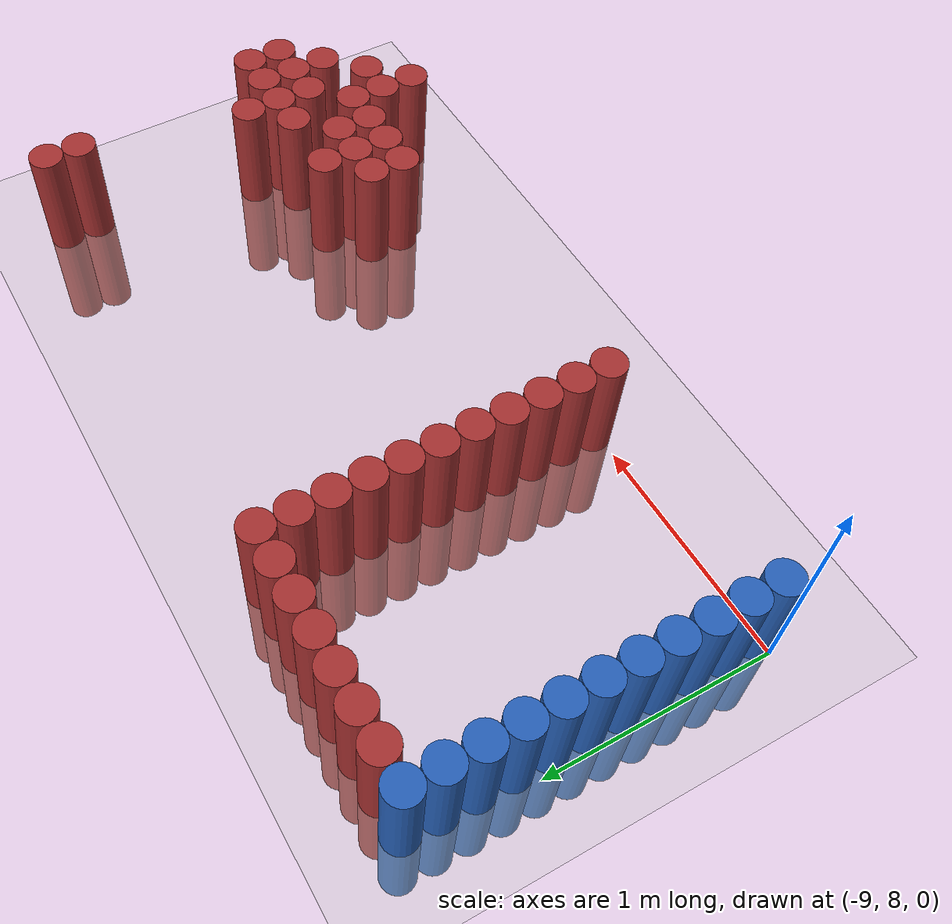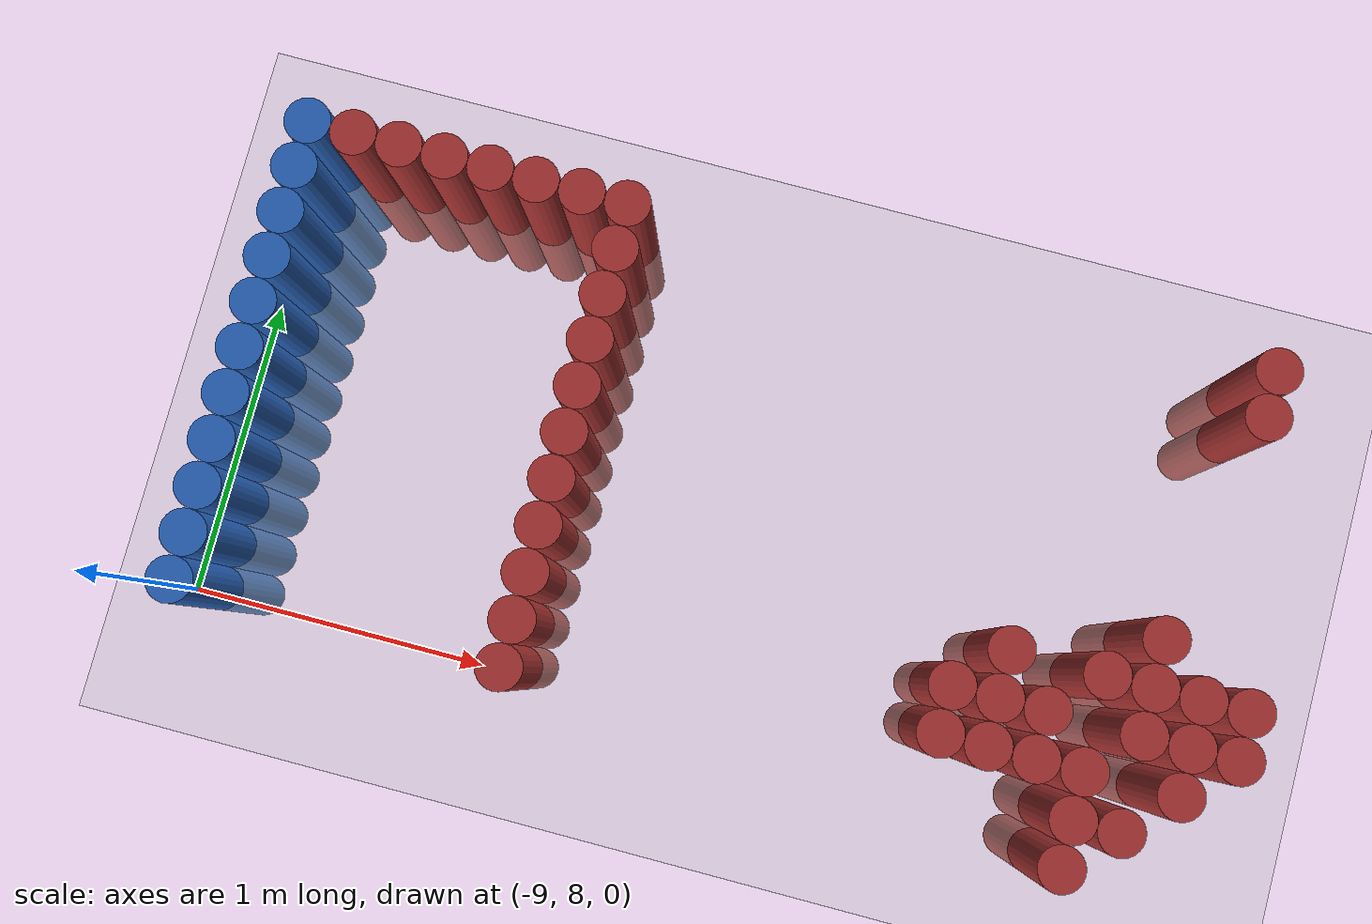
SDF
<sdf version="1.6">
 <world name="default">
  <model name="ground_plane">
   <static>1</static>
   <link name="link">
    <collision name="collision">
     <geometry><plane><normal>0 0 1</normal><size>100 100</size></plane></geometry>
     <surface><friction><ode><mu>100</mu><mu2>50</mu2></ode></friction></surface>
    </collision>
    <visual name="visual">
     <cast_shadows>0</cast_shadows>
     <geometry><plane><normal>0 0 1</normal><size>100 100</size></plane></geometry>
     <material>
      <script><uri>file://media/materials/scripts/gazebo.material</uri><name>Gazebo/Grey</name></script>
     </material>
    </visual>
   </link>
  </model>
  <model name="unit_cylinder_144">
   <static>1</static>
   <pose>-8.925000 8.025000 0.000000 0.000000 0.000000 0.000000</pose>
   <link name="link">
    <inertial>
     <mass>1</mass>
     <inertia><ixx>0.145833</ixx><ixy>0</ixy><ixz>0</ixz><iyy>0.145833</iyy><iyz>0</iyz><izz>0.125</izz></inertia>
    </inertial>
    <collision name="collision">
     <geometry><cylinder><radius>0.075000</radius><length>1</length></cylinder></geometry>
    </collision>
    <visual name="visual">
     <geometry><cylinder><radius>0.075000</radius><length>1</length></cylinder></geometry>
     <material>
      <ambient>0.152000 0.379000 0.720000 1</ambient>
      <diffuse>0.152000 0.379000 0.720000 1</diffuse>
     </material>
     <material>
      <script><name>Gazebo/Grey</name><uri>file://media/materials/scripts/gazebo.material</uri></script>
     </material>
    </visual>
   </link>
  </model>
  <model name="unit_cylinder_145">
   <static>1</static>
   <pose>-8.925000 8.175000 0.000000 0.000000 0.000000 0.000000</pose>
   <link name="link">
    <inertial>
     <mass>1</mass>
     <inertia><ixx>0.145833</ixx><ixy>0</ixy><ixz>0</ixz><iyy>0.145833</iyy><iyz>0</iyz><izz>0.125</izz></inertia>
    </inertial>
    <collision name="collision">
     <geometry><cylinder><radius>0.075000</radius><length>1</length></cylinder></geometry>
    </collision>
    <visual name="visual">
     <geometry><cylinder><radius>0.075000</radius><length>1</length></cylinder></geometry>
     <material>
      <ambient>0.152000 0.379000 0.720000 1</ambient>
      <diffuse>0.152000 0.379000 0.720000 1</diffuse>
     </material>
     <material>
      <script><name>Gazebo/Grey</name><uri>file://media/materials/scripts/gazebo.material</uri></script>
     </material>
    </visual>
   </link>
  </model>
  <model name="unit_cylinder_146">
   <static>1</static>
   <pose>-8.925000 8.325000 0.000000 0.000000 0.000000 0.000000</pose>
   <link name="link">
    <inertial>
     <mass>1</mass>
     <inertia><ixx>0.145833</ixx><ixy>0</ixy><ixz>0</ixz><iyy>0.145833</iyy><iyz>0</iyz><izz>0.125</izz></inertia>
    </inertial>
    <collision name="collision">
     <geometry><cylinder><radius>0.075000</radius><length>1</length></cylinder></geometry>
    </collision>
    <visual name="visual">
     <geometry><cylinder><radius>0.075000</radius><length>1</length></cylinder></geometry>
     <material>
      <ambient>0.152000 0.379000 0.720000 1</ambient>
      <diffuse>0.152000 0.379000 0.720000 1</diffuse>
     </material>
     <material>
      <script><name>Gazebo/Grey</name><uri>file://media/materials/scripts/gazebo.material</uri></script>
     </material>
    </visual>
   </link>
  </model>
  <model name="unit_cylinder_147">
   <static>1</static>
   <pose>-8.925000 8.475000 0.000000 0.000000 0.000000 0.000000</pose>
   <link name="link">
    <inertial>
     <mass>1</mass>
     <inertia><ixx>0.145833</ixx><ixy>0</ixy><ixz>0</ixz><iyy>0.145833</iyy><iyz>0</iyz><izz>0.125</izz></inertia>
    </inertial>
    <collision name="collision">
     <geometry><cylinder><radius>0.075000</radius><length>1</length></cylinder></geometry>
    </collision>
    <visual name="visual">
     <geometry><cylinder><radius>0.075000</radius><length>1</length></cylinder></geometry>
     <material>
      <ambient>0.152000 0.379000 0.720000 1</ambient>
      <diffuse>0.152000 0.379000 0.720000 1</diffuse>
     </material>
     <material>
      <script><name>Gazebo/Grey</name><uri>file://media/materials/scripts/gazebo.material</uri></script>
     </material>
    </visual>
   </link>
  </model>
  <model name="unit_cylinder_148">
   <static>1</static>
   <pose>-8.925000 8.625000 0.000000 0.000000 0.000000 0.000000</pose>
   <link name="link">
    <inertial>
     <mass>1</mass>
     <inertia><ixx>0.145833</ixx><ixy>0</ixy><ixz>0</ixz><iyy>0.145833</iyy><iyz>0</iyz><izz>0.125</izz></inertia>
    </inertial>
    <collision name="collision">
     <geometry><cylinder><radius>0.075000</radius><length>1</length></cylinder></geometry>
    </collision>
    <visual name="visual">
     <geometry><cylinder><radius>0.075000</radius><length>1</length></cylinder></geometry>
     <material>
      <ambient>0.152000 0.379000 0.720000 1</ambient>
      <diffuse>0.152000 0.379000 0.720000 1</diffuse>
     </material>
     <material>
      <script><name>Gazebo/Grey</name><uri>file://media/materials/scripts/gazebo.material</uri></script>
     </material>
    </visual>
   </link>
  </model>
  <model name="unit_cylinder_149">
   <static>1</static>
   <pose>-8.925000 8.775000 0.000000 0.000000 0.000000 0.000000</pose>
   <link name="link">
    <inertial>
     <mass>1</mass>
     <inertia><ixx>0.145833</ixx><ixy>0</ixy><ixz>0</ixz><iyy>0.145833</iyy><iyz>0</iyz><izz>0.125</izz></inertia>
    </inertial>
    <collision name="collision">
     <geometry><cylinder><radius>0.075000</radius><length>1</length></cylinder></geometry>
    </collision>
    <visual name="visual">
     <geometry><cylinder><radius>0.075000</radius><length>1</length></cylinder></geometry>
     <material>
      <ambient>0.152000 0.379000 0.720000 1</ambient>
      <diffuse>0.152000 0.379000 0.720000 1</diffuse>
     </material>
     <material>
      <script><name>Gazebo/Grey</name><uri>file://media/materials/scripts/gazebo.material</uri></script>
     </material>
    </visual>
   </link>
  </model>
  <model name="unit_cylinder_150">
   <static>1</static>
   <pose>-8.925000 8.925000 0.000000 0.000000 0.000000 0.000000</pose>
   <link name="link">
    <inertial>
     <mass>1</mass>
     <inertia><ixx>0.145833</ixx><ixy>0</ixy><ixz>0</ixz><iyy>0.145833</iyy><iyz>0</iyz><izz>0.125</izz></inertia>
    </inertial>
    <collision name="collision">
     <geometry><cylinder><radius>0.075000</radius><length>1</length></cylinder></geometry>
    </collision>
    <visual name="visual">
     <geometry><cylinder><radius>0.075000</radius><length>1</length></cylinder></geometry>
     <material>
      <ambient>0.152000 0.379000 0.720000 1</ambient>
      <diffuse>0.152000 0.379000 0.720000 1</diffuse>
     </material>
     <material>
      <script><name>Gazebo/Grey</name><uri>file://media/materials/scripts/gazebo.material</uri></script>
     </material>
    </visual>
   </link>
  </model>
  <model name="unit_cylinder_151">
   <static>1</static>
   <pose>-8.925000 9.075000 0.000000 0.000000 0.000000 0.000000</pose>
   <link name="link">
    <inertial>
     <mass>1</mass>
     <inertia><ixx>0.145833</ixx><ixy>0</ixy><ixz>0</ixz><iyy>0.145833</iyy><iyz>0</iyz><izz>0.125</izz></inertia>
    </inertial>
    <collision name="collision">
     <geometry><cylinder><radius>0.075000</radius><length>1</length></cylinder></geometry>
    </collision>
    <visual name="visual">
     <geometry><cylinder><radius>0.075000</radius><length>1</length></cylinder></geometry>
     <material>
      <ambient>0.152000 0.379000 0.720000 1</ambient>
      <diffuse>0.152000 0.379000 0.720000 1</diffuse>
     </material>
     <material>
      <script><name>Gazebo/Grey</name><uri>file://media/materials/scripts/gazebo.material</uri></script>
     </material>
    </visual>
   </link>
  </model>
  <model name="unit_cylinder_152">
   <static>1</static>
   <pose>-8.925000 9.225000 0.000000 0.000000 0.000000 0.000000</pose>
   <link name="link">
    <inertial>
     <mass>1</mass>
     <inertia><ixx>0.145833</ixx><ixy>0</ixy><ixz>0</ixz><iyy>0.145833</iyy><iyz>0</iyz><izz>0.125</izz></inertia>
    </inertial>
    <collision name="collision">
     <geometry><cylinder><radius>0.075000</radius><length>1</length></cylinder></geometry>
    </collision>
    <visual name="visual">
     <geometry><cylinder><radius>0.075000</radius><length>1</length></cylinder></geometry>
     <material>
      <ambient>0.152000 0.379000 0.720000 1</ambient>
      <diffuse>0.152000 0.379000 0.720000 1</diffuse>
     </material>
     <material>
      <script><name>Gazebo/Grey</name><uri>file://media/materials/scripts/gazebo.material</uri></script>
     </material>
    </visual>
   </link>
  </model>
  <model name="unit_cylinder_153">
   <static>1</static>
   <pose>-8.925000 9.375000 0.000000 0.000000 0.000000 0.000000</pose>
   <link name="link">
    <inertial>
     <mass>1</mass>
     <inertia><ixx>0.145833</ixx><ixy>0</ixy><ixz>0</ixz><iyy>0.145833</iyy><iyz>0</iyz><izz>0.125</izz></inertia>
    </inertial>
    <collision name="collision">
     <geometry><cylinder><radius>0.075000</radius><length>1</length></cylinder></geometry>
    </collision>
    <visual name="visual">
     <geometry><cylinder><radius>0.075000</radius><length>1</length></cylinder></geometry>
     <material>
      <ambient>0.152000 0.379000 0.720000 1</ambient>
      <diffuse>0.152000 0.379000 0.720000 1</diffuse>
     </material>
     <material>
      <script><name>Gazebo/Grey</name><uri>file://media/materials/scripts/gazebo.material</uri></script>
     </material>
    </visual>
   </link>
  </model>
  <model name="unit_cylinder_154">
   <static>1</static>
   <pose>-8.925000 9.525000 0.000000 0.000000 0.000000 0.000000</pose>
   <link name="link">
    <inertial>
     <mass>1</mass>
     <inertia><ixx>0.145833</ixx><ixy>0</ixy><ixz>0</ixz><iyy>0.145833</iyy><iyz>0</iyz><izz>0.125</izz></inertia>
    </inertial>
    <collision name="collision">
     <geometry><cylinder><radius>0.075000</radius><length>1</length></cylinder></geometry>
    </collision>
    <visual name="visual">
     <geometry><cylinder><radius>0.075000</radius><length>1</length></cylinder></geometry>
     <material>
      <ambient>0.152000 0.379000 0.720000 1</ambient>
      <diffuse>0.152000 0.379000 0.720000 1</diffuse>
     </material>
     <material>
      <script><name>Gazebo/Grey</name><uri>file://media/materials/scripts/gazebo.material</uri></script>
     </material>
    </visual>
   </link>
  </model>
  <model name="unit_cylinder_156">
   <static>1</static>
   <pose>-8.775000 9.525000 0.000000 0.000000 0.000000 0.000000</pose>
   <link name="link">
    <inertial>
     <mass>1</mass>
     <inertia><ixx>0.145833</ixx><ixy>0</ixy><ixz>0</ixz><iyy>0.145833</iyy><iyz>0</iyz><izz>0.125</izz></inertia>
    </inertial>
    <collision name="collision">
     <geometry><cylinder><radius>0.075000</radius><length>1</length></cylinder></geometry>
    </collision>
    <visual name="visual">
     <geometry><cylinder><radius>0.075000</radius><length>1</length></cylinder></geometry>
     <material>
      <ambient>0.648000 0.192000 0.192000 1</ambient>
      <diffuse>0.648000 0.192000 0.192000 1</diffuse>
     </material>
     <material>
      <script><name>Gazebo/Grey</name><uri>file://media/materials/scripts/gazebo.material</uri></script>
     </material>
    </visual>
   </link>
  </model>
  <model name="unit_cylinder_158">
   <static>1</static>
   <pose>-8.625000 9.525000 0.000000 0.000000 0.000000 0.000000</pose>
   <link name="link">
    <inertial>
     <mass>1</mass>
     <inertia><ixx>0.145833</ixx><ixy>0</ixy><ixz>0</ixz><iyy>0.145833</iyy><iyz>0</iyz><izz>0.125</izz></inertia>
    </inertial>
    <collision name="collision">
     <geometry><cylinder><radius>0.075000</radius><length>1</length></cylinder></geometry>
    </collision>
    <visual name="visual">
     <geometry><cylinder><radius>0.075000</radius><length>1</length></cylinder></geometry>
     <material>
      <ambient>0.648000 0.192000 0.192000 1</ambient>
      <diffuse>0.648000 0.192000 0.192000 1</diffuse>
     </material>
     <material>
      <script><name>Gazebo/Grey</name><uri>file://media/materials/scripts/gazebo.material</uri></script>
     </material>
    </visual>
   </link>
  </model>
  <model name="unit_cylinder_160">
   <static>1</static>
   <pose>-8.475000 9.525000 0.000000 0.000000 0.000000 0.000000</pose>
   <link name="link">
    <inertial>
     <mass>1</mass>
     <inertia><ixx>0.145833</ixx><ixy>0</ixy><ixz>0</ixz><iyy>0.145833</iyy><iyz>0</iyz><izz>0.125</izz></inertia>
    </inertial>
    <collision name="collision">
     <geometry><cylinder><radius>0.075000</radius><length>1</length></cylinder></geometry>
    </collision>
    <visual name="visual">
     <geometry><cylinder><radius>0.075000</radius><length>1</length></cylinder></geometry>
     <material>
      <ambient>0.648000 0.192000 0.192000 1</ambient>
      <diffuse>0.648000 0.192000 0.192000 1</diffuse>
     </material>
     <material>
      <script><name>Gazebo/Grey</name><uri>file://media/materials/scripts/gazebo.material</uri></script>
     </material>
    </visual>
   </link>
  </model>
  <model name="unit_cylinder_162">
   <static>1</static>
   <pose>-8.325000 9.525000 0.000000 0.000000 0.000000 0.000000</pose>
   <link name="link">
    <inertial>
     <mass>1</mass>
     <inertia><ixx>0.145833</ixx><ixy>0</ixy><ixz>0</ixz><iyy>0.145833</iyy><iyz>0</iyz><izz>0.125</izz></inertia>
    </inertial>
    <collision name="collision">
     <geometry><cylinder><radius>0.075000</radius><length>1</length></cylinder></geometry>
    </collision>
    <visual name="visual">
     <geometry><cylinder><radius>0.075000</radius><length>1</length></cylinder></geometry>
     <material>
      <ambient>0.648000 0.192000 0.192000 1</ambient>
      <diffuse>0.648000 0.192000 0.192000 1</diffuse>
     </material>
     <material>
      <script><name>Gazebo/Grey</name><uri>file://media/materials/scripts/gazebo.material</uri></script>
     </material>
    </visual>
   </link>
  </model>
  <model name="unit_cylinder_164">
   <static>1</static>
   <pose>-8.175000 9.525000 0.000000 0.000000 0.000000 0.000000</pose>
   <link name="link">
    <inertial>
     <mass>1</mass>
     <inertia><ixx>0.145833</ixx><ixy>0</ixy><ixz>0</ixz><iyy>0.145833</iyy><iyz>0</iyz><izz>0.125</izz></inertia>
    </inertial>
    <collision name="collision">
     <geometry><cylinder><radius>0.075000</radius><length>1</length></cylinder></geometry>
    </collision>
    <visual name="visual">
     <geometry><cylinder><radius>0.075000</radius><length>1</length></cylinder></geometry>
     <material>
      <ambient>0.648000 0.192000 0.192000 1</ambient>
      <diffuse>0.648000 0.192000 0.192000 1</diffuse>
     </material>
     <material>
      <script><name>Gazebo/Grey</name><uri>file://media/materials/scripts/gazebo.material</uri></script>
     </material>
    </visual>
   </link>
  </model>
  <model name="unit_cylinder_166">
   <static>1</static>
   <pose>-8.025000 9.525000 0.000000 0.000000 0.000000 0.000000</pose>
   <link name="link">
    <inertial>
     <mass>1</mass>
     <inertia><ixx>0.145833</ixx><ixy>0</ixy><ixz>0</ixz><iyy>0.145833</iyy><iyz>0</iyz><izz>0.125</izz></inertia>
    </inertial>
    <collision name="collision">
     <geometry><cylinder><radius>0.075000</radius><length>1</length></cylinder></geometry>
    </collision>
    <visual name="visual">
     <geometry><cylinder><radius>0.075000</radius><length>1</length></cylinder></geometry>
     <material>
      <ambient>0.648000 0.192000 0.192000 1</ambient>
      <diffuse>0.648000 0.192000 0.192000 1</diffuse>
     </material>
     <material>
      <script><name>Gazebo/Grey</name><uri>file://media/materials/scripts/gazebo.material</uri></script>
     </material>
    </visual>
   </link>
  </model>
  <model name="unit_cylinder_179">
   <static>1</static>
   <pose>-7.875000 8.025000 0.000000 0.000000 0.000000 0.000000</pose>
   <link name="link">
    <inertial>
     <mass>1</mass>
     <inertia><ixx>0.145833</ixx><ixy>0</ixy><ixz>0</ixz><iyy>0.145833</iyy><iyz>0</iyz><izz>0.125</izz></inertia>
    </inertial>
    <collision name="collision">
     <geometry><cylinder><radius>0.075000</radius><length>1</length></cylinder></geometry>
    </collision>
    <visual name="visual">
     <geometry><cylinder><radius>0.075000</radius><length>1</length></cylinder></geometry>
     <material>
      <ambient>0.648000 0.192000 0.192000 1</ambient>
      <diffuse>0.648000 0.192000 0.192000 1</diffuse>
     </material>
     <material>
      <script><name>Gazebo/Grey</name><uri>file://media/materials/scripts/gazebo.material</uri></script>
     </material>
    </visual>
   </link>
  </model>
  <model name="unit_cylinder_180">
   <static>1</static>
   <pose>-7.875000 8.175000 0.000000 0.000000 0.000000 0.000000</pose>
   <link name="link">
    <inertial>
     <mass>1</mass>
     <inertia><ixx>0.145833</ixx><ixy>0</ixy><ixz>0</ixz><iyy>0.145833</iyy><iyz>0</iyz><izz>0.125</izz></inertia>
    </inertial>
    <collision name="collision">
     <geometry><cylinder><radius>0.075000</radius><length>1</length></cylinder></geometry>
    </collision>
    <visual name="visual">
     <geometry><cylinder><radius>0.075000</radius><length>1</length></cylinder></geometry>
     <material>
      <ambient>0.648000 0.192000 0.192000 1</ambient>
      <diffuse>0.648000 0.192000 0.192000 1</diffuse>
     </material>
     <material>
      <script><name>Gazebo/Grey</name><uri>file://media/materials/scripts/gazebo.material</uri></script>
     </material>
    </visual>
   </link>
  </model>
  <model name="unit_cylinder_181">
   <static>1</static>
   <pose>-7.875000 8.325000 0.000000 0.000000 0.000000 0.000000</pose>
   <link name="link">
    <inertial>
     <mass>1</mass>
     <inertia><ixx>0.145833</ixx><ixy>0</ixy><ixz>0</ixz><iyy>0.145833</iyy><iyz>0</iyz><izz>0.125</izz></inertia>
    </inertial>
    <collision name="collision">
     <geometry><cylinder><radius>0.075000</radius><length>1</length></cylinder></geometry>
    </collision>
    <visual name="visual">
     <geometry><cylinder><radius>0.075000</radius><length>1</length></cylinder></geometry>
     <material>
      <ambient>0.648000 0.192000 0.192000 1</ambient>
      <diffuse>0.648000 0.192000 0.192000 1</diffuse>
     </material>
     <material>
      <script><name>Gazebo/Grey</name><uri>file://media/materials/scripts/gazebo.material</uri></script>
     </material>
    </visual>
   </link>
  </model>
  <model name="unit_cylinder_182">
   <static>1</static>
   <pose>-7.875000 8.475000 0.000000 0.000000 0.000000 0.000000</pose>
   <link name="link">
    <inertial>
     <mass>1</mass>
     <inertia><ixx>0.145833</ixx><ixy>0</ixy><ixz>0</ixz><iyy>0.145833</iyy><iyz>0</iyz><izz>0.125</izz></inertia>
    </inertial>
    <collision name="collision">
     <geometry><cylinder><radius>0.075000</radius><length>1</length></cylinder></geometry>
    </collision>
    <visual name="visual">
     <geometry><cylinder><radius>0.075000</radius><length>1</length></cylinder></geometry>
     <material>
      <ambient>0.648000 0.192000 0.192000 1</ambient>
      <diffuse>0.648000 0.192000 0.192000 1</diffuse>
     </material>
     <material>
      <script><name>Gazebo/Grey</name><uri>file://media/materials/scripts/gazebo.material</uri></script>
     </material>
    </visual>
   </link>
  </model>
  <model name="unit_cylinder_183">
   <static>1</static>
   <pose>-7.875000 8.625000 0.000000 0.000000 0.000000 0.000000</pose>
   <link name="link">
    <inertial>
     <mass>1</mass>
     <inertia><ixx>0.145833</ixx><ixy>0</ixy><ixz>0</ixz><iyy>0.145833</iyy><iyz>0</iyz><izz>0.125</izz></inertia>
    </inertial>
    <collision name="collision">
     <geometry><cylinder><radius>0.075000</radius><length>1</length></cylinder></geometry>
    </collision>
    <visual name="visual">
     <geometry><cylinder><radius>0.075000</radius><length>1</length></cylinder></geometry>
     <material>
      <ambient>0.648000 0.192000 0.192000 1</ambient>
      <diffuse>0.648000 0.192000 0.192000 1</diffuse>
     </material>
     <material>
      <script><name>Gazebo/Grey</name><uri>file://media/materials/scripts/gazebo.material</uri></script>
     </material>
    </visual>
   </link>
  </model>
  <model name="unit_cylinder_184">
   <static>1</static>
   <pose>-7.875000 8.775000 0.000000 0.000000 0.000000 0.000000</pose>
   <link name="link">
    <inertial>
     <mass>1</mass>
     <inertia><ixx>0.145833</ixx><ixy>0</ixy><ixz>0</ixz><iyy>0.145833</iyy><iyz>0</iyz><izz>0.125</izz></inertia>
    </inertial>
    <collision name="collision">
     <geometry><cylinder><radius>0.075000</radius><length>1</length></cylinder></geometry>
    </collision>
    <visual name="visual">
     <geometry><cylinder><radius>0.075000</radius><length>1</length></cylinder></geometry>
     <material>
      <ambient>0.648000 0.192000 0.192000 1</ambient>
      <diffuse>0.648000 0.192000 0.192000 1</diffuse>
     </material>
     <material>
      <script><name>Gazebo/Grey</name><uri>file://media/materials/scripts/gazebo.material</uri></script>
     </material>
    </visual>
   </link>
  </model>
  <model name="unit_cylinder_185">
   <static>1</static>
   <pose>-7.875000 8.925000 0.000000 0.000000 0.000000 0.000000</pose>
   <link name="link">
    <inertial>
     <mass>1</mass>
     <inertia><ixx>0.145833</ixx><ixy>0</ixy><ixz>0</ixz><iyy>0.145833</iyy><iyz>0</iyz><izz>0.125</izz></inertia>
    </inertial>
    <collision name="collision">
     <geometry><cylinder><radius>0.075000</radius><length>1</length></cylinder></geometry>
    </collision>
    <visual name="visual">
     <geometry><cylinder><radius>0.075000</radius><length>1</length></cylinder></geometry>
     <material>
      <ambient>0.648000 0.192000 0.192000 1</ambient>
      <diffuse>0.648000 0.192000 0.192000 1</diffuse>
     </material>
     <material>
      <script><name>Gazebo/Grey</name><uri>file://media/materials/scripts/gazebo.material</uri></script>
     </material>
    </visual>
   </link>
  </model>
  <model name="unit_cylinder_186">
   <static>1</static>
   <pose>-7.875000 9.075000 0.000000 0.000000 0.000000 0.000000</pose>
   <link name="link">
    <inertial>
     <mass>1</mass>
     <inertia><ixx>0.145833</ixx><ixy>0</ixy><ixz>0</ixz><iyy>0.145833</iyy><iyz>0</iyz><izz>0.125</izz></inertia>
    </inertial>
    <collision name="collision">
     <geometry><cylinder><radius>0.075000</radius><length>1</length></cylinder></geometry>
    </collision>
    <visual name="visual">
     <geometry><cylinder><radius>0.075000</radius><length>1</length></cylinder></geometry>
     <material>
      <ambient>0.648000 0.192000 0.192000 1</ambient>
      <diffuse>0.648000 0.192000 0.192000 1</diffuse>
     </material>
     <material>
      <script><name>Gazebo/Grey</name><uri>file://media/materials/scripts/gazebo.material</uri></script>
     </material>
    </visual>
   </link>
  </model>
  <model name="unit_cylinder_187">
   <static>1</static>
   <pose>-7.875000 9.225000 0.000000 0.000000 0.000000 0.000000</pose>
   <link name="link">
    <inertial>
     <mass>1</mass>
     <inertia><ixx>0.145833</ixx><ixy>0</ixy><ixz>0</ixz><iyy>0.145833</iyy><iyz>0</iyz><izz>0.125</izz></inertia>
    </inertial>
    <collision name="collision">
     <geometry><cylinder><radius>0.075000</radius><length>1</length></cylinder></geometry>
    </collision>
    <visual name="visual">
     <geometry><cylinder><radius>0.075000</radius><length>1</length></cylinder></geometry>
     <material>
      <ambient>0.648000 0.192000 0.192000 1</ambient>
      <diffuse>0.648000 0.192000 0.192000 1</diffuse>
     </material>
     <material>
      <script><name>Gazebo/Grey</name><uri>file://media/materials/scripts/gazebo.material</uri></script>
     </material>
    </visual>
   </link>
  </model>
  <model name="unit_cylinder_188">
   <static>1</static>
   <pose>-7.875000 9.375000 0.000000 0.000000 0.000000 0.000000</pose>
   <link name="link">
    <inertial>
     <mass>1</mass>
     <inertia><ixx>0.145833</ixx><ixy>0</ixy><ixz>0</ixz><iyy>0.145833</iyy><iyz>0</iyz><izz>0.125</izz></inertia>
    </inertial>
    <collision name="collision">
     <geometry><cylinder><radius>0.075000</radius><length>1</length></cylinder></geometry>
    </collision>
    <visual name="visual">
     <geometry><cylinder><radius>0.075000</radius><length>1</length></cylinder></geometry>
     <material>
      <ambient>0.648000 0.192000 0.192000 1</ambient>
      <diffuse>0.648000 0.192000 0.192000 1</diffuse>
     </material>
     <material>
      <script><name>Gazebo/Grey</name><uri>file://media/materials/scripts/gazebo.material</uri></script>
     </material>
    </visual>
   </link>
  </model>
  <model name="unit_cylinder_189">
   <static>1</static>
   <pose>-7.875000 9.525000 0.000000 0.000000 0.000000 0.000000</pose>
   <link name="link">
    <inertial>
     <mass>1</mass>
     <inertia><ixx>0.145833</ixx><ixy>0</ixy><ixz>0</ixz><iyy>0.145833</iyy><iyz>0</iyz><izz>0.125</izz></inertia>
    </inertial>
    <collision name="collision">
     <geometry><cylinder><radius>0.075000</radius><length>1</length></cylinder></geometry>
    </collision>
    <visual name="visual">
     <geometry><cylinder><radius>0.075000</radius><length>1</length></cylinder></geometry>
     <material>
      <ambient>0.648000 0.192000 0.192000 1</ambient>
      <diffuse>0.648000 0.192000 0.192000 1</diffuse>
     </material>
     <material>
      <script><name>Gazebo/Grey</name><uri>file://media/materials/scripts/gazebo.material</uri></script>
     </material>
    </visual>
   </link>
  </model>
  <model name="unit_cylinder_216">
   <static>1</static>
   <pose>-6.525000 8.175000 0.000000 0.000000 0.000000 0.000000</pose>
   <link name="link">
    <inertial>
     <mass>1</mass>
     <inertia><ixx>0.145833</ixx><ixy>0</ixy><ixz>0</ixz><iyy>0.145833</iyy><iyz>0</iyz><izz>0.125</izz></inertia>
    </inertial>
    <collision name="collision">
     <geometry><cylinder><radius>0.075000</radius><length>1</length></cylinder></geometry>
    </collision>
    <visual name="visual">
     <geometry><cylinder><radius>0.075000</radius><length>1</length></cylinder></geometry>
     <material>
      <ambient>0.648000 0.192000 0.192000 1</ambient>
      <diffuse>0.648000 0.192000 0.192000 1</diffuse>
     </material>
     <material>
      <script><name>Gazebo/Grey</name><uri>file://media/materials/scripts/gazebo.material</uri></script>
     </material>
    </visual>
   </link>
  </model>
  <model name="unit_cylinder_217">
   <static>1</static>
   <pose>-6.525000 8.325000 0.000000 0.000000 0.000000 0.000000</pose>
   <link name="link">
    <inertial>
     <mass>1</mass>
     <inertia><ixx>0.145833</ixx><ixy>0</ixy><ixz>0</ixz><iyy>0.145833</iyy><iyz>0</iyz><izz>0.125</izz></inertia>
    </inertial>
    <collision name="collision">
     <geometry><cylinder><radius>0.075000</radius><length>1</length></cylinder></geometry>
    </collision>
    <visual name="visual">
     <geometry><cylinder><radius>0.075000</radius><length>1</length></cylinder></geometry>
     <material>
      <ambient>0.648000 0.192000 0.192000 1</ambient>
      <diffuse>0.648000 0.192000 0.192000 1</diffuse>
     </material>
     <material>
      <script><name>Gazebo/Grey</name><uri>file://media/materials/scripts/gazebo.material</uri></script>
     </material>
    </visual>
   </link>
  </model>
  <model name="unit_cylinder_226">
   <static>1</static>
   <pose>-6.375000 8.175000 0.000000 0.000000 0.000000 0.000000</pose>
   <link name="link">
    <inertial>
     <mass>1</mass>
     <inertia><ixx>0.145833</ixx><ixy>0</ixy><ixz>0</ixz><iyy>0.145833</iyy><iyz>0</iyz><izz>0.125</izz></inertia>
    </inertial>
    <collision name="collision">
     <geometry><cylinder><radius>0.075000</radius><length>1</length></cylinder></geometry>
    </collision>
    <visual name="visual">
     <geometry><cylinder><radius>0.075000</radius><length>1</length></cylinder></geometry>
     <material>
      <ambient>0.648000 0.192000 0.192000 1</ambient>
      <diffuse>0.648000 0.192000 0.192000 1</diffuse>
     </material>
     <material>
      <script><name>Gazebo/Grey</name><uri>file://media/materials/scripts/gazebo.material</uri></script>
     </material>
    </visual>
   </link>
  </model>
  <model name="unit_cylinder_227">
   <static>1</static>
   <pose>-6.375000 8.325000 0.000000 0.000000 0.000000 0.000000</pose>
   <link name="link">
    <inertial>
     <mass>1</mass>
     <inertia><ixx>0.145833</ixx><ixy>0</ixy><ixz>0</ixz><iyy>0.145833</iyy><iyz>0</iyz><izz>0.125</izz></inertia>
    </inertial>
    <collision name="collision">
     <geometry><cylinder><radius>0.075000</radius><length>1</length></cylinder></geometry>
    </collision>
    <visual name="visual">
     <geometry><cylinder><radius>0.075000</radius><length>1</length></cylinder></geometry>
     <material>
      <ambient>0.648000 0.192000 0.192000 1</ambient>
      <diffuse>0.648000 0.192000 0.192000 1</diffuse>
     </material>
     <material>
      <script><name>Gazebo/Grey</name><uri>file://media/materials/scripts/gazebo.material</uri></script>
     </material>
    </visual>
   </link>
  </model>
  <model name="unit_cylinder_228">
   <static>1</static>
   <pose>-6.375000 8.475000 0.000000 0.000000 0.000000 0.000000</pose>
   <link name="link">
    <inertial>
     <mass>1</mass>
     <inertia><ixx>0.145833</ixx><ixy>0</ixy><ixz>0</ixz><iyy>0.145833</iyy><iyz>0</iyz><izz>0.125</izz></inertia>
    </inertial>
    <collision name="collision">
     <geometry><cylinder><radius>0.075000</radius><length>1</length></cylinder></geometry>
    </collision>
    <visual name="visual">
     <geometry><cylinder><radius>0.075000</radius><length>1</length></cylinder></geometry>
     <material>
      <ambient>0.648000 0.192000 0.192000 1</ambient>
      <diffuse>0.648000 0.192000 0.192000 1</diffuse>
     </material>
     <material>
      <script><name>Gazebo/Grey</name><uri>file://media/materials/scripts/gazebo.material</uri></script>
     </material>
    </visual>
   </link>
  </model>
  <model name="unit_cylinder_236">
   <static>1</static>
   <pose>-6.225000 8.175000 0.000000 0.000000 0.000000 0.000000</pose>
   <link name="link">
    <inertial>
     <mass>1</mass>
     <inertia><ixx>0.145833</ixx><ixy>0</ixy><ixz>0</ixz><iyy>0.145833</iyy><iyz>0</iyz><izz>0.125</izz></inertia>
    </inertial>
    <collision name="collision">
     <geometry><cylinder><radius>0.075000</radius><length>1</length></cylinder></geometry>
    </collision>
    <visual name="visual">
     <geometry><cylinder><radius>0.075000</radius><length>1</length></cylinder></geometry>
     <material>
      <ambient>0.648000 0.192000 0.192000 1</ambient>
      <diffuse>0.648000 0.192000 0.192000 1</diffuse>
     </material>
     <material>
      <script><name>Gazebo/Grey</name><uri>file://media/materials/scripts/gazebo.material</uri></script>
     </material>
    </visual>
   </link>
  </model>
  <model name="unit_cylinder_237">
   <static>1</static>
   <pose>-6.225000 8.325000 0.000000 0.000000 0.000000 0.000000</pose>
   <link name="link">
    <inertial>
     <mass>1</mass>
     <inertia><ixx>0.145833</ixx><ixy>0</ixy><ixz>0</ixz><iyy>0.145833</iyy><iyz>0</iyz><izz>0.125</izz></inertia>
    </inertial>
    <collision name="collision">
     <geometry><cylinder><radius>0.075000</radius><length>1</length></cylinder></geometry>
    </collision>
    <visual name="visual">
     <geometry><cylinder><radius>0.075000</radius><length>1</length></cylinder></geometry>
     <material>
      <ambient>0.648000 0.192000 0.192000 1</ambient>
      <diffuse>0.648000 0.192000 0.192000 1</diffuse>
     </material>
     <material>
      <script><name>Gazebo/Grey</name><uri>file://media/materials/scripts/gazebo.material</uri></script>
     </material>
    </visual>
   </link>
  </model>
  <model name="unit_cylinder_241">
   <static>1</static>
   <pose>-6.075000 7.875000 0.000000 0.000000 0.000000 0.000000</pose>
   <link name="link">
    <inertial>
     <mass>1</mass>
     <inertia><ixx>0.145833</ixx><ixy>0</ixy><ixz>0</ixz><iyy>0.145833</iyy><iyz>0</iyz><izz>0.125</izz></inertia>
    </inertial>
    <collision name="collision">
     <geometry><cylinder><radius>0.075000</radius><length>1</length></cylinder></geometry>
    </collision>
    <visual name="visual">
     <geometry><cylinder><radius>0.075000</radius><length>1</length></cylinder></geometry>
     <material>
      <ambient>0.648000 0.192000 0.192000 1</ambient>
      <diffuse>0.648000 0.192000 0.192000 1</diffuse>
     </material>
     <material>
      <script><name>Gazebo/Grey</name><uri>file://media/materials/scripts/gazebo.material</uri></script>
     </material>
    </visual>
   </link>
  </model>
  <model name="unit_cylinder_242">
   <static>1</static>
   <pose>-6.075000 8.025000 0.000000 0.000000 0.000000 0.000000</pose>
   <link name="link">
    <inertial>
     <mass>1</mass>
     <inertia><ixx>0.145833</ixx><ixy>0</ixy><ixz>0</ixz><iyy>0.145833</iyy><iyz>0</iyz><izz>0.125</izz></inertia>
    </inertial>
    <collision name="collision">
     <geometry><cylinder><radius>0.075000</radius><length>1</length></cylinder></geometry>
    </collision>
    <visual name="visual">
     <geometry><cylinder><radius>0.075000</radius><length>1</length></cylinder></geometry>
     <material>
      <ambient>0.648000 0.192000 0.192000 1</ambient>
      <diffuse>0.648000 0.192000 0.192000 1</diffuse>
     </material>
     <material>
      <script><name>Gazebo/Grey</name><uri>file://media/materials/scripts/gazebo.material</uri></script>
     </material>
    </visual>
   </link>
  </model>
  <model name="unit_cylinder_243">
   <static>1</static>
   <pose>-6.075000 8.175000 0.000000 0.000000 0.000000 0.000000</pose>
   <link name="link">
    <inertial>
     <mass>1</mass>
     <inertia><ixx>0.145833</ixx><ixy>0</ixy><ixz>0</ixz><iyy>0.145833</iyy><iyz>0</iyz><izz>0.125</izz></inertia>
    </inertial>
    <collision name="collision">
     <geometry><cylinder><radius>0.075000</radius><length>1</length></cylinder></geometry>
    </collision>
    <visual name="visual">
     <geometry><cylinder><radius>0.075000</radius><length>1</length></cylinder></geometry>
     <material>
      <ambient>0.648000 0.192000 0.192000 1</ambient>
      <diffuse>0.648000 0.192000 0.192000 1</diffuse>
     </material>
     <material>
      <script><name>Gazebo/Grey</name><uri>file://media/materials/scripts/gazebo.material</uri></script>
     </material>
    </visual>
   </link>
  </model>
  <model name="unit_cylinder_244">
   <static>1</static>
   <pose>-6.075000 8.475000 0.000000 0.000000 0.000000 0.000000</pose>
   <link name="link">
    <inertial>
     <mass>1</mass>
     <inertia><ixx>0.145833</ixx><ixy>0</ixy><ixz>0</ixz><iyy>0.145833</iyy><iyz>0</iyz><izz>0.125</izz></inertia>
    </inertial>
    <collision name="collision">
     <geometry><cylinder><radius>0.075000</radius><length>1</length></cylinder></geometry>
    </collision>
    <visual name="visual">
     <geometry><cylinder><radius>0.075000</radius><length>1</length></cylinder></geometry>
     <material>
      <ambient>0.648000 0.192000 0.192000 1</ambient>
      <diffuse>0.648000 0.192000 0.192000 1</diffuse>
     </material>
     <material>
      <script><name>Gazebo/Grey</name><uri>file://media/materials/scripts/gazebo.material</uri></script>
     </material>
    </visual>
   </link>
  </model>
  <model name="unit_cylinder_245">
   <static>1</static>
   <pose>-5.925000 8.025000 0.000000 0.000000 0.000000 0.000000</pose>
   <link name="link">
    <inertial>
     <mass>1</mass>
     <inertia><ixx>0.145833</ixx><ixy>0</ixy><ixz>0</ixz><iyy>0.145833</iyy><iyz>0</iyz><izz>0.125</izz></inertia>
    </inertial>
    <collision name="collision">
     <geometry><cylinder><radius>0.075000</radius><length>1</length></cylinder></geometry>
    </collision>
    <visual name="visual">
     <geometry><cylinder><radius>0.075000</radius><length>1</length></cylinder></geometry>
     <material>
      <ambient>0.648000 0.192000 0.192000 1</ambient>
      <diffuse>0.648000 0.192000 0.192000 1</diffuse>
     </material>
     <material>
      <script><name>Gazebo/Grey</name><uri>file://media/materials/scripts/gazebo.material</uri></script>
     </material>
    </visual>
   </link>
  </model>
  <model name="unit_cylinder_246">
   <static>1</static>
   <pose>-5.925000 8.325000 0.000000 0.000000 0.000000 0.000000</pose>
   <link name="link">
    <inertial>
     <mass>1</mass>
     <inertia><ixx>0.145833</ixx><ixy>0</ixy><ixz>0</ixz><iyy>0.145833</iyy><iyz>0</iyz><izz>0.125</izz></inertia>
    </inertial>
    <collision name="collision">
     <geometry><cylinder><radius>0.075000</radius><length>1</length></cylinder></geometry>
    </collision>
    <visual name="visual">
     <geometry><cylinder><radius>0.075000</radius><length>1</length></cylinder></geometry>
     <material>
      <ambient>0.648000 0.192000 0.192000 1</ambient>
      <diffuse>0.648000 0.192000 0.192000 1</diffuse>
     </material>
     <material>
      <script><name>Gazebo/Grey</name><uri>file://media/materials/scripts/gazebo.material</uri></script>
     </material>
    </visual>
   </link>
  </model>
  <model name="unit_cylinder_247">
   <static>1</static>
   <pose>-5.925000 8.475000 0.000000 0.000000 0.000000 0.000000</pose>
   <link name="link">
    <inertial>
     <mass>1</mass>
     <inertia><ixx>0.145833</ixx><ixy>0</ixy><ixz>0</ixz><iyy>0.145833</iyy><iyz>0</iyz><izz>0.125</izz></inertia>
    </inertial>
    <collision name="collision">
     <geometry><cylinder><radius>0.075000</radius><length>1</length></cylinder></geometry>
    </collision>
    <visual name="visual">
     <geometry><cylinder><radius>0.075000</radius><length>1</length></cylinder></geometry>
     <material>
      <ambient>0.648000 0.192000 0.192000 1</ambient>
      <diffuse>0.648000 0.192000 0.192000 1</diffuse>
     </material>
     <material>
      <script><name>Gazebo/Grey</name><uri>file://media/materials/scripts/gazebo.material</uri></script>
     </material>
    </visual>
   </link>
  </model>
  <model name="unit_cylinder_248">
   <static>1</static>
   <pose>-5.925000 8.625000 0.000000 0.000000 0.000000 0.000000</pose>
   <link name="link">
    <inertial>
     <mass>1</mass>
     <inertia><ixx>0.145833</ixx><ixy>0</ixy><ixz>0</ixz><iyy>0.145833</iyy><iyz>0</iyz><izz>0.125</izz></inertia>
    </inertial>
    <collision name="collision">
     <geometry><cylinder><radius>0.075000</radius><length>1</length></cylinder></geometry>
    </collision>
    <visual name="visual">
     <geometry><cylinder><radius>0.075000</radius><length>1</length></cylinder></geometry>
     <material>
      <ambient>0.648000 0.192000 0.192000 1</ambient>
      <diffuse>0.648000 0.192000 0.192000 1</diffuse>
     </material>
     <material>
      <script><name>Gazebo/Grey</name><uri>file://media/materials/scripts/gazebo.material</uri></script>
     </material>
    </visual>
   </link>
  </model>
  <model name="unit_cylinder_249">
   <static>1</static>
   <pose>-5.775000 8.175000 0.000000 0.000000 0.000000 0.000000</pose>
   <link name="link">
    <inertial>
     <mass>1</mass>
     <inertia><ixx>0.145833</ixx><ixy>0</ixy><ixz>0</ixz><iyy>0.145833</iyy><iyz>0</iyz><izz>0.125</izz></inertia>
    </inertial>
    <collision name="collision">
     <geometry><cylinder><radius>0.075000</radius><length>1</length></cylinder></geometry>
    </collision>
    <visual name="visual">
     <geometry><cylinder><radius>0.075000</radius><length>1</length></cylinder></geometry>
     <material>
      <ambient>0.648000 0.192000 0.192000 1</ambient>
      <diffuse>0.648000 0.192000 0.192000 1</diffuse>
     </material>
     <material>
      <script><name>Gazebo/Grey</name><uri>file://media/materials/scripts/gazebo.material</uri></script>
     </material>
    </visual>
   </link>
  </model>
  <model name="unit_cylinder_250">
   <static>1</static>
   <pose>-5.775000 8.325000 0.000000 0.000000 0.000000 0.000000</pose>
   <link name="link">
    <inertial>
     <mass>1</mass>
     <inertia><ixx>0.145833</ixx><ixy>0</ixy><ixz>0</ixz><iyy>0.145833</iyy><iyz>0</iyz><izz>0.125</izz></inertia>
    </inertial>
    <collision name="collision">
     <geometry><cylinder><radius>0.075000</radius><length>1</length></cylinder></geometry>
    </collision>
    <visual name="visual">
     <geometry><cylinder><radius>0.075000</radius><length>1</length></cylinder></geometry>
     <material>
      <ambient>0.648000 0.192000 0.192000 1</ambient>
      <diffuse>0.648000 0.192000 0.192000 1</diffuse>
     </material>
     <material>
      <script><name>Gazebo/Grey</name><uri>file://media/materials/scripts/gazebo.material</uri></script>
     </material>
    </visual>
   </link>
  </model>
  <model name="unit_cylinder_251">
   <static>1</static>
   <pose>-5.775000 8.475000 0.000000 0.000000 0.000000 0.000000</pose>
   <link name="link">
    <inertial>
     <mass>1</mass>
     <inertia><ixx>0.145833</ixx><ixy>0</ixy><ixz>0</ixz><iyy>0.145833</iyy><iyz>0</iyz><izz>0.125</izz></inertia>
    </inertial>
    <collision name="collision">
     <geometry><cylinder><radius>0.075000</radius><length>1</length></cylinder></geometry>
    </collision>
    <visual name="visual">
     <geometry><cylinder><radius>0.075000</radius><length>1</length></cylinder></geometry>
     <material>
      <ambient>0.648000 0.192000 0.192000 1</ambient>
      <diffuse>0.648000 0.192000 0.192000 1</diffuse>
     </material>
     <material>
      <script><name>Gazebo/Grey</name><uri>file://media/materials/scripts/gazebo.material</uri></script>
     </material>
    </visual>
   </link>
  </model>
  <model name="unit_cylinder_252">
   <static>1</static>
   <pose>-5.775000 9.375000 0.000000 0.000000 0.000000 0.000000</pose>
   <link name="link">
    <inertial>
     <mass>1</mass>
     <inertia><ixx>0.145833</ixx><ixy>0</ixy><ixz>0</ixz><iyy>0.145833</iyy><iyz>0</iyz><izz>0.125</izz></inertia>
    </inertial>
    <collision name="collision">
     <geometry><cylinder><radius>0.075000</radius><length>1</length></cylinder></geometry>
    </collision>
    <visual name="visual">
     <geometry><cylinder><radius>0.075000</radius><length>1</length></cylinder></geometry>
     <material>
      <ambient>0.648000 0.192000 0.192000 1</ambient>
      <diffuse>0.648000 0.192000 0.192000 1</diffuse>
     </material>
     <material>
      <script><name>Gazebo/Grey</name><uri>file://media/materials/scripts/gazebo.material</uri></script>
     </material>
    </visual>
   </link>
  </model>
  <model name="unit_cylinder_253">
   <static>1</static>
   <pose>-5.775000 9.525000 0.000000 0.000000 0.000000 0.000000</pose>
   <link name="link">
    <inertial>
     <mass>1</mass>
     <inertia><ixx>0.145833</ixx><ixy>0</ixy><ixz>0</ixz><iyy>0.145833</iyy><iyz>0</iyz><izz>0.125</izz></inertia>
    </inertial>
    <collision name="collision">
     <geometry><cylinder><radius>0.075000</radius><length>1</length></cylinder></geometry>
    </collision>
    <visual name="visual">
     <geometry><cylinder><radius>0.075000</radius><length>1</length></cylinder></geometry>
     <material>
      <ambient>0.648000 0.192000 0.192000 1</ambient>
      <diffuse>0.648000 0.192000 0.192000 1</diffuse>
     </material>
     <material>
      <script><name>Gazebo/Grey</name><uri>file://media/materials/scripts/gazebo.material</uri></script>
     </material>
    </visual>
   </link>
  </model>
  <model name="unit_cylinder_254">
   <static>1</static>
   <pose>-5.625000 8.325000 0.000000 0.000000 0.000000 0.000000</pose>
   <link name="link">
    <inertial>
     <mass>1</mass>
     <inertia><ixx>0.145833</ixx><ixy>0</ixy><ixz>0</ixz><iyy>0.145833</iyy><iyz>0</iyz><izz>0.125</izz></inertia>
    </inertial>
    <collision name="collision">
     <geometry><cylinder><radius>0.075000</radius><length>1</length></cylinder></geometry>
    </collision>
    <visual name="visual">
     <geometry><cylinder><radius>0.075000</radius><length>1</length></cylinder></geometry>
     <material>
      <ambient>0.648000 0.192000 0.192000 1</ambient>
      <diffuse>0.648000 0.192000 0.192000 1</diffuse>
     </material>
     <material>
      <script><name>Gazebo/Grey</name><uri>file://media/materials/scripts/gazebo.material</uri></script>
     </material>
    </visual>
   </link>
  </model>
  <model name="unit_cylinder_255">
   <static>1</static>
   <pose>-5.625000 8.475000 0.000000 0.000000 0.000000 0.000000</pose>
   <link name="link">
    <inertial>
     <mass>1</mass>
     <inertia><ixx>0.145833</ixx><ixy>0</ixy><ixz>0</ixz><iyy>0.145833</iyy><iyz>0</iyz><izz>0.125</izz></inertia>
    </inertial>
    <collision name="collision">
     <geometry><cylinder><radius>0.075000</radius><length>1</length></cylinder></geometry>
    </collision>
    <visual name="visual">
     <geometry><cylinder><radius>0.075000</radius><length>1</length></cylinder></geometry>
     <material>
      <ambient>0.648000 0.192000 0.192000 1</ambient>
      <diffuse>0.648000 0.192000 0.192000 1</diffuse>
     </material>
     <material>
      <script><name>Gazebo/Grey</name><uri>file://media/materials/scripts/gazebo.material</uri></script>
     </material>
    </visual>
   </link>
  </model>
 </world>
</sdf>
